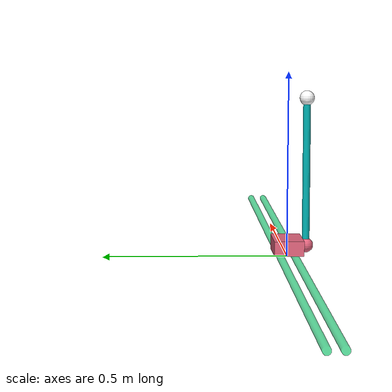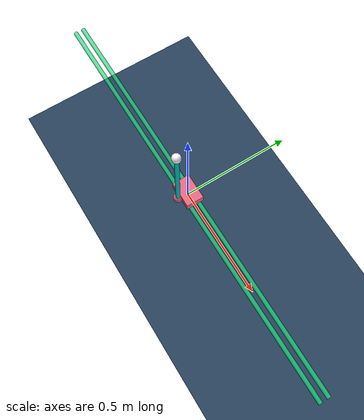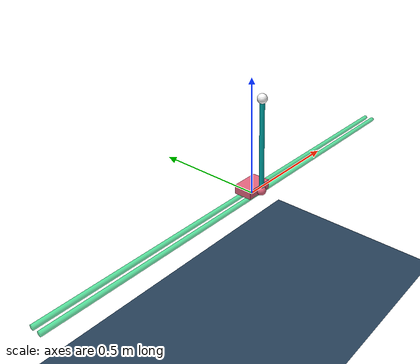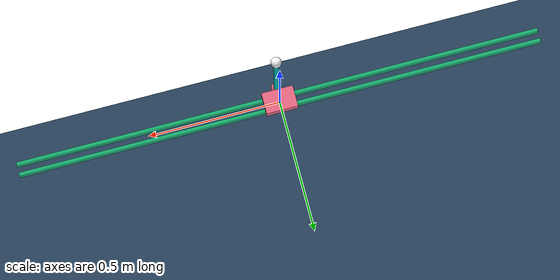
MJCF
<mujoco>
  <compiler autolimits="true"/>

  <asset>
    <texture name="grid" type="2d" builtin="checker" width="512" height="512" rgb1=".1 .2 .3" rgb2=".2 .3 .4"/>
    <material name="grid" texture="grid" texrepeat="1 1" texuniform="true" reflectance="0"/>
  </asset>

  <worldbody>
    <geom type="plane" pos="0 0 -1" size="3 3 .01" material="grid"/>
    <light name="top light" pos="0 0 4" mode="trackcom" diffuse=".7 .7 .7"/>

    <geom name="rail1" type="cylinder" pos="0 0.02 0" size=".01 1" quat='0.707 0 0.707 0' rgba=".1 .9 0.5 0.7"/>
    <geom name="rail2" type="cylinder" pos="0 -0.02 0" size=".01 1" quat='0.707 0 0.707 0' rgba=".1 .9 0.5 0.7"/>

    <body name='cart' pos='0 0 0.03'>

        <!--  cart  -->
        <joint name='slider' type='slide' limited='true' pos='0 0 0'
               axis='1 0 0' range='-1 1' />
        <geom name="cart" type="box" pos="0 0 0" size=".06 0.04 0.02" rgba=".9 .4 0.5 1"/>
        <site name='cart sensor' type='box' pos='0 0 0'
              size='.06 0.04 0.02' rgba='1 1 1 0' />

        <!--  pole  -->
        <body name='pole' pos='0 -0.05 0'>
            <joint name='hinge' type='hinge' pos='0 0 0' axis='0 1 0'/>
            <site type='sphere' size='.02' pos='0 0 0' rgba='.9 .4 0.5 1'/>
            <geom name='cpole' type='capsule' fromto='0 0 0 0 0 0.4'
                size='0.01 0.2' rgba='0 0.7 0.7 1' />
            <site type='sphere' name='tip' size='.02' pos='0 0 0.4' rgba='1 1 1 1'/>

        </body>

    </body>
  </worldbody>

    <actuator>
        <motor name='slide' joint='slider' gear='5' ctrllimited='true' ctrlrange='-1 1' />
    </actuator>

    <sensor>
        <accelerometer name="accelerometer" site="cart sensor"/>
        <touch name="collision" site="cart sensor"/>
  </sensor>

  <keyframe>
    <key name="hang_down" qpos="0 1.57"/>
  </keyframe>

</mujoco>
